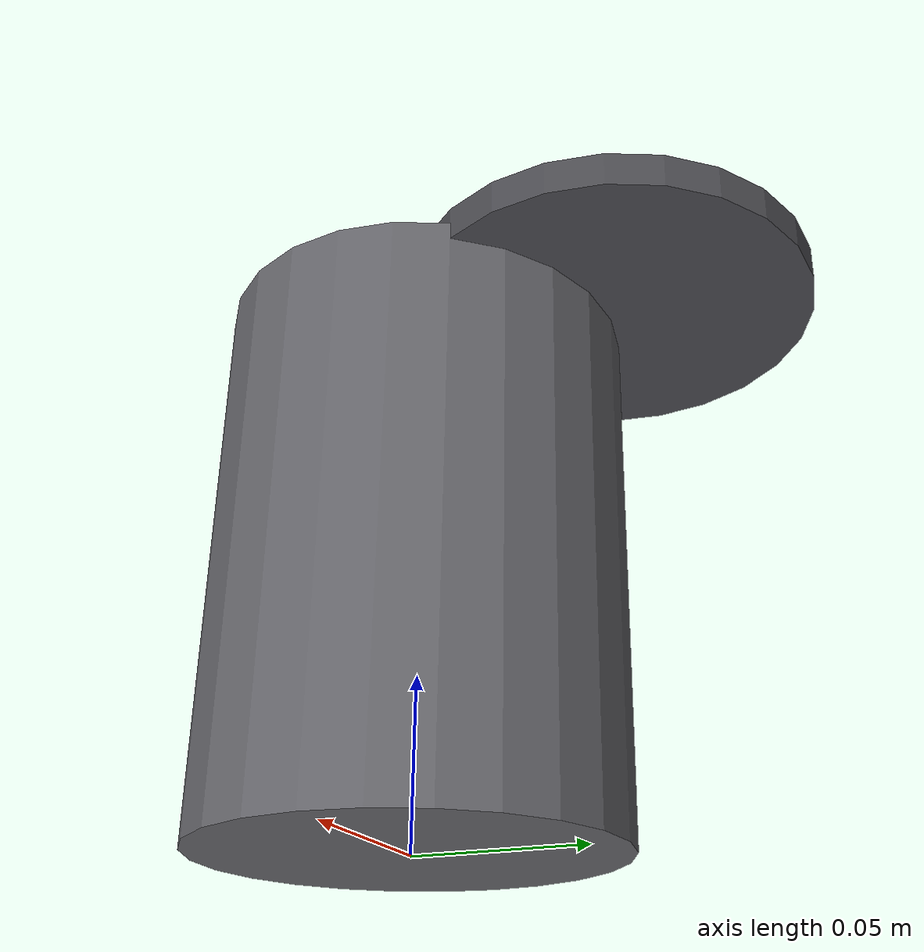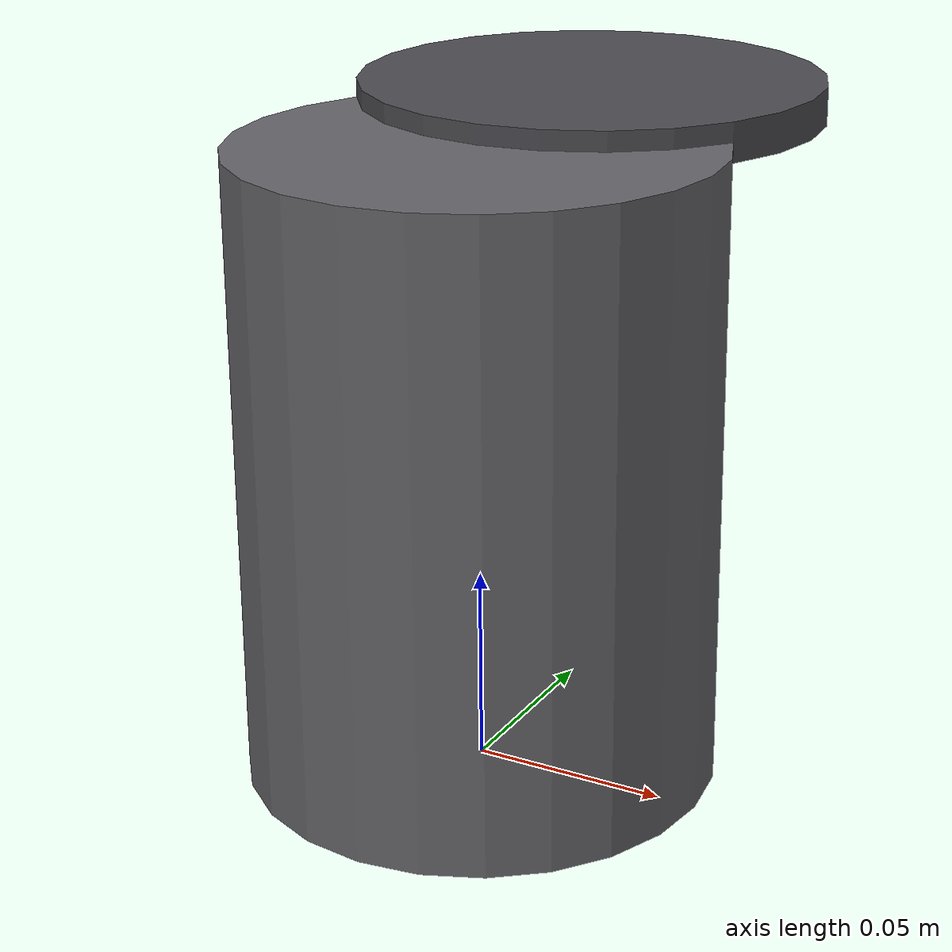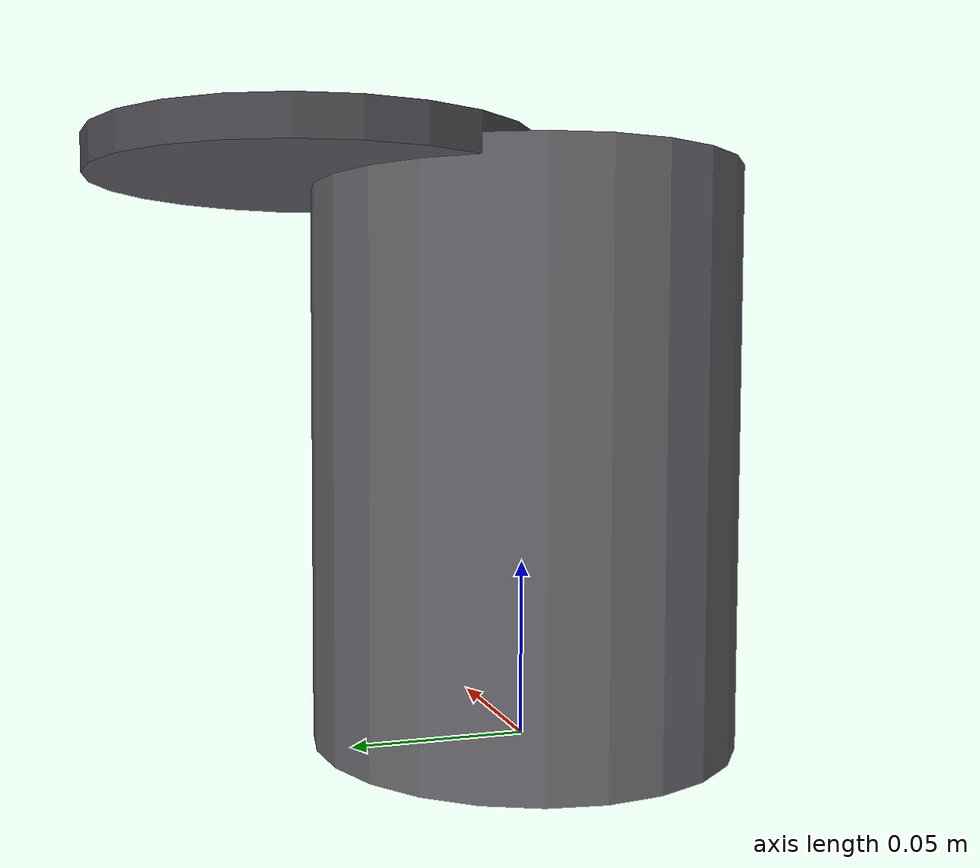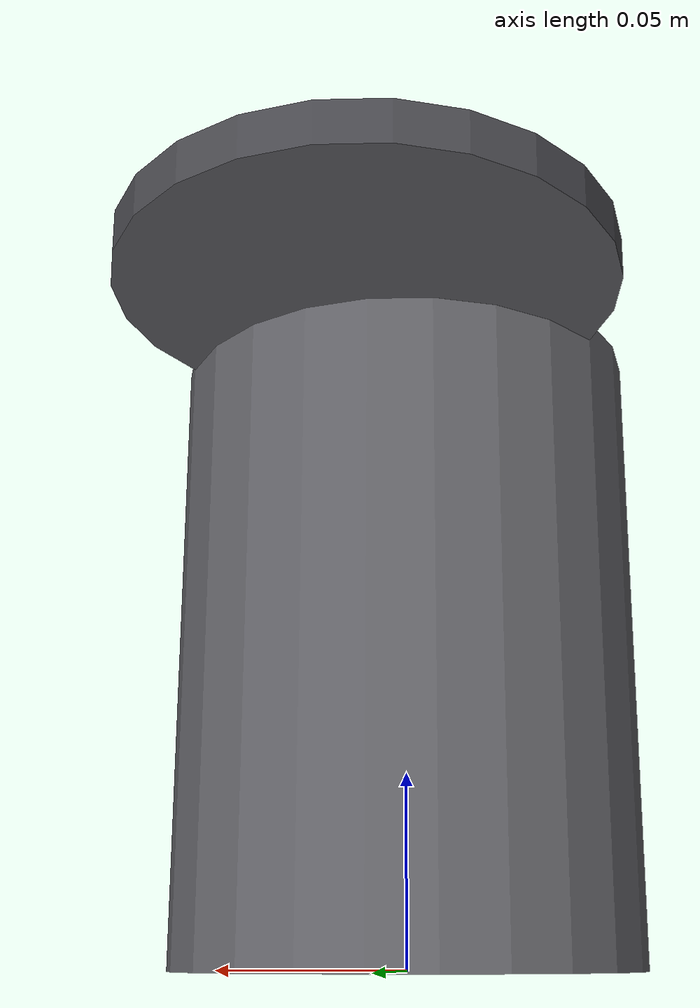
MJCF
<?xml version="1.0" encoding="utf-8"?>
<mujoco model="sample_pulverizer">
  <compiler angle="radian" autolimits="true"/>
  <default>
    <default class="body"><geom contype="1" conaffinity="1"/></default>
  </default>
  <worldbody>
    <body name="base">
      <geom type="cylinder" size="0.06 0.08" pos="0 0 0.08" rgba="0.4 0.4 0.42 1" class="body"/>
      <body name="pulverizer_lid" pos="0 0.06 0.16">
        <joint name="pulverizer_lid_joint" type="hinge" axis="1 0 0" range="0 1.6" damping="0.3" frictionloss="0.3"/>
  <geom type="cylinder" size="0.06 0.005" pos="0 0 0" rgba="0.3 0.3 0.32 1" class="body"/>
      </body>
    </body>
  </worldbody>
</mujoco>
